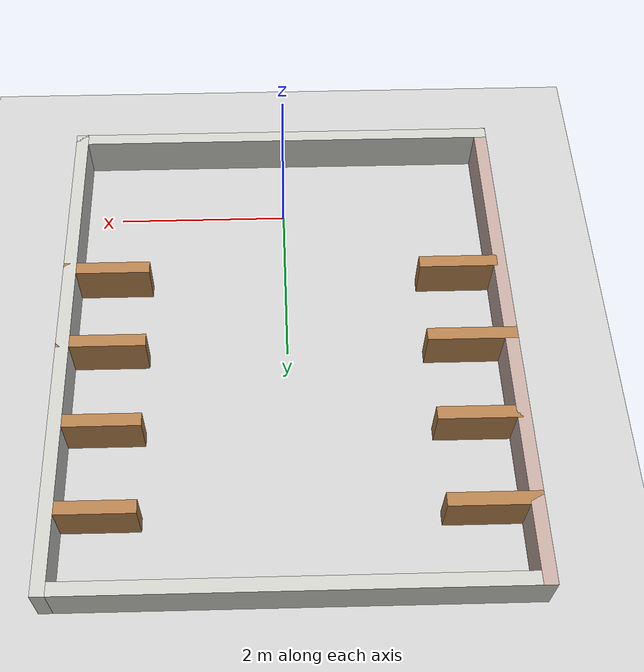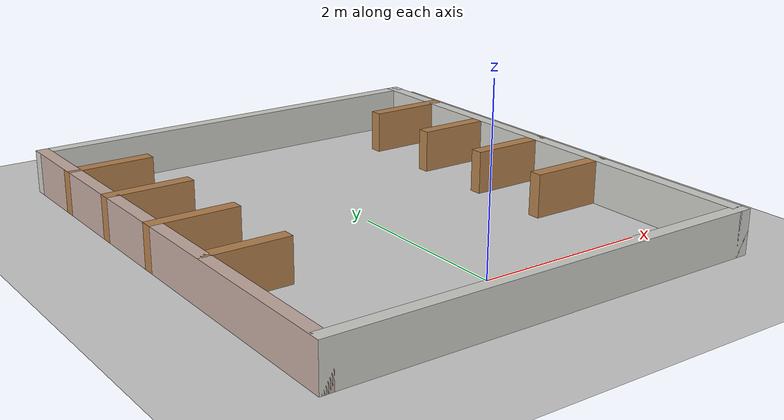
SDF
<sdf version="1.7">
 <world name="default">
  <light name="sun" type="directional">
   <pose>0 0 10 0 -0 0</pose>
   <diffuse>0.8 0.8 0.8 1</diffuse>
   <specular>0.2 0.2 0.2 1</specular>
   <attenuation>
    <range>1000</range>
    <constant>0.9</constant>
    <linear>0.01</linear>
    <quadratic>0.001</quadratic>
   </attenuation>
   <direction>-0.5 0.1 -0.9</direction>
   <spot><inner_angle>0</inner_angle><outer_angle>0</outer_angle><falloff>0</falloff></spot>
  </light>
  <model name="ground_plane">
   <static>1</static>
   <link name="link">
    <collision name="collision">
     <geometry><plane><normal>0 0 1</normal><size>100 100</size></plane></geometry>
     <surface><friction><ode><mu>100</mu><mu2>50</mu2></ode></friction></surface>
    </collision>
    <visual name="visual">
     <cast_shadows>0</cast_shadows>
     <geometry><plane><normal>0 0 1</normal><size>100 100</size></plane></geometry>
     <material>
      <script><uri>file://media/materials/scripts/gazebo.material</uri><name>Gazebo/Grey</name></script>
     </material>
    </visual>
   </link>
  </model>
  <gravity>0 0 -9.8</gravity>
  <magnetic_field>6e-06 2.3e-05 -4.2e-05</magnetic_field>
  <atmosphere type="adiabatic"/>
  <physics type="ode">
   <max_step_size>0.001</max_step_size>
   <real_time_factor>1</real_time_factor>
   <real_time_update_rate>1000</real_time_update_rate>
  </physics>
  <scene><ambient>0.4 0.4 0.4 1</ambient><background>0.7 0.7 0.7 1</background><shadows>1</shadows></scene>
  <audio><device>default</device></audio>
  <spherical_coordinates>
   <surface_model>EARTH_WGS84</surface_model>
   <latitude_deg>0</latitude_deg>
   <longitude_deg>0</longitude_deg>
   <elevation>0</elevation>
   <heading_deg>0</heading_deg>
  </spherical_coordinates>
  <model name="sdp_3">
   <pose>0 2 0 0 -0 0</pose>
   <link name="Wall_10">
    <collision name="Wall_10_Collision">
     <geometry><box><size>6 0.15 0.5</size></box></geometry>
     <pose>0 0 0.25 0 -0 0</pose>
    </collision>
    <visual name="Wall_10_Visual">
     <pose>0 0 0.25 0 -0 0</pose>
     <geometry><box><size>6 0.15 0.5</size></box></geometry>
     <material>
      <script><uri>file://media/materials/scripts/gazebo.material</uri><name>Gazebo/CeilingTiled</name></script>
      <ambient>0.760784 0.662745 0.627451 1</ambient>
     </material>
     <meta><layer>0</layer></meta>
    </visual>
    <pose>2.5 0 0 0 -0 1.5708</pose>
   </link>
   <link name="Wall_11">
    <collision name="Wall_11_Collision">
     <geometry><box><size>5.15 0.15 0.5</size></box></geometry>
     <pose>0 0 0.25 0 -0 0</pose>
    </collision>
    <visual name="Wall_11_Visual">
     <pose>0 0 0.25 0 -0 0</pose>
     <geometry><box><size>5.15 0.15 0.5</size></box></geometry>
     <material>
      <script><uri>file://media/materials/scripts/gazebo.material</uri><name>Gazebo/CeilingTiled</name></script>
      <ambient>0.760784 0.662745 0.627451 1</ambient>
     </material>
     <meta><layer>0</layer></meta>
    </visual>
    <pose>0 2.925 0 0 -0 3.14159</pose>
   </link>
   <link name="Wall_12">
    <collision name="Wall_12_Collision">
     <geometry><box><size>6 0.15 0.5</size></box></geometry>
     <pose>0 0 0.25 0 -0 0</pose>
    </collision>
    <visual name="Wall_12_Visual">
     <pose>0 0 0.25 0 -0 0</pose>
     <geometry><box><size>6 0.15 0.5</size></box></geometry>
     <material>
      <script><uri>file://media/materials/scripts/gazebo.material</uri><name>Gazebo/Grey</name></script>
      <ambient>0.760784 0.662745 0.627451 1</ambient>
     </material>
     <meta><layer>0</layer></meta>
    </visual>
    <pose>-2.5 0 0 0 -0 -1.5708</pose>
   </link>
   <link name="Wall_14">
    <collision name="Wall_14_Collision">
     <geometry><box><size>1.011 0.15 0.5</size></box></geometry>
     <pose>0 0 0.25 0 -0 0</pose>
    </collision>
    <visual name="Wall_14_Visual">
     <pose>0 0 0.25 0 -0 0</pose>
     <geometry><box><size>1.011 0.15 0.5</size></box></geometry>
     <material>
      <script><uri>file://media/materials/scripts/gazebo.material</uri><name>Gazebo/Wood</name></script>
      <ambient>1 1 1 1</ambient>
     </material>
     <meta><layer>0</layer></meta>
    </visual>
    <pose>-2.0695 -0.925 0 0 -0 0</pose>
   </link>
   <link name="Wall_16">
    <collision name="Wall_16_Collision">
     <geometry><box><size>1.011 0.15 0.5</size></box></geometry>
     <pose>0 0 0.25 0 -0 0</pose>
    </collision>
    <visual name="Wall_16_Visual">
     <pose>0 0 0.25 0 -0 0</pose>
     <geometry><box><size>1.011 0.15 0.5</size></box></geometry>
     <material>
      <script><uri>file://media/materials/scripts/gazebo.material</uri><name>Gazebo/Wood</name></script>
      <ambient>1 1 1 1</ambient>
     </material>
     <meta><layer>0</layer></meta>
    </visual>
    <pose>-2.0695 0.075 0 0 -0 0</pose>
   </link>
   <link name="Wall_23">
    <collision name="Wall_23_Collision">
     <geometry><box><size>1 0.15 0.5</size></box></geometry>
     <pose>0 0 0.25 0 -0 0</pose>
    </collision>
    <visual name="Wall_23_Visual">
     <pose>0 0 0.25 0 -0 0</pose>
     <geometry><box><size>1 0.15 0.5</size></box></geometry>
     <material>
      <script><uri>file://media/materials/scripts/gazebo.material</uri><name>Gazebo/Wood</name></script>
      <ambient>1 1 1 1</ambient>
     </material>
     <meta><layer>0</layer></meta>
    </visual>
    <pose>-2.075 1.075 0 0 -0 0</pose>
   </link>
   <link name="Wall_25">
    <collision name="Wall_25_Collision">
     <geometry><box><size>1 0.15 0.5</size></box></geometry>
     <pose>0 0 0.25 0 -0 0</pose>
    </collision>
    <visual name="Wall_25_Visual">
     <pose>0 0 0.25 0 -0 0</pose>
     <geometry><box><size>1 0.15 0.5</size></box></geometry>
     <material>
      <script><uri>file://media/materials/scripts/gazebo.material</uri><name>Gazebo/Wood</name></script>
      <ambient>1 1 1 1</ambient>
     </material>
     <meta><layer>0</layer></meta>
    </visual>
    <pose>-2.075 2.075 0 0 -0 3.14159</pose>
   </link>
   <link name="Wall_28">
    <collision name="Wall_28_Collision">
     <geometry><box><size>1 0.15 0.5</size></box></geometry>
     <pose>0 0 0.25 0 -0 0</pose>
    </collision>
    <visual name="Wall_28_Visual">
     <pose>0 0 0.25 0 -0 0</pose>
     <geometry><box><size>1 0.15 0.5</size></box></geometry>
     <material>
      <script><uri>file://media/materials/scripts/gazebo.material</uri><name>Gazebo/Wood</name></script>
      <ambient>1 1 1 1</ambient>
     </material>
     <meta><layer>0</layer></meta>
    </visual>
    <pose>2.075 2.075 0 0 -0 0</pose>
   </link>
   <link name="Wall_30">
    <collision name="Wall_30_Collision">
     <geometry><box><size>1 0.15 0.5</size></box></geometry>
     <pose>0 0 0.25 0 -0 0</pose>
    </collision>
    <visual name="Wall_30_Visual">
     <pose>0 0 0.25 0 -0 0</pose>
     <geometry><box><size>1 0.15 0.5</size></box></geometry>
     <material>
      <script><uri>file://media/materials/scripts/gazebo.material</uri><name>Gazebo/Wood</name></script>
      <ambient>1 1 1 1</ambient>
     </material>
     <meta><layer>0</layer></meta>
    </visual>
    <pose>2.075 1.075 0 0 -0 3.14159</pose>
   </link>
   <link name="Wall_32">
    <collision name="Wall_32_Collision">
     <geometry><box><size>1 0.15 0.5</size></box></geometry>
     <pose>0 0 0.25 0 -0 0</pose>
    </collision>
    <visual name="Wall_32_Visual">
     <pose>0 0 0.25 0 -0 0</pose>
     <geometry><box><size>1 0.15 0.5</size></box></geometry>
     <material>
      <script><uri>file://media/materials/scripts/gazebo.material</uri><name>Gazebo/Wood</name></script>
      <ambient>1 1 1 1</ambient>
     </material>
     <meta><layer>0</layer></meta>
    </visual>
    <pose>2.075 0.075 0 0 -0 0</pose>
   </link>
   <link name="Wall_34">
    <collision name="Wall_34_Collision">
     <geometry><box><size>1 0.15 0.5</size></box></geometry>
     <pose>0 0 0.25 0 -0 0</pose>
    </collision>
    <visual name="Wall_34_Visual">
     <pose>0 0 0.25 0 -0 0</pose>
     <geometry><box><size>1 0.15 0.5</size></box></geometry>
     <material>
      <script><uri>file://media/materials/scripts/gazebo.material</uri><name>Gazebo/Wood</name></script>
      <ambient>1 1 1 1</ambient>
     </material>
     <meta><layer>0</layer></meta>
    </visual>
    <pose>2.075 -0.925 0 0 -0 0</pose>
   </link>
   <link name="Wall_7">
    <collision name="Wall_7_Collision">
     <geometry><box><size>5.15 0.15 0.5</size></box></geometry>
     <pose>0 0 0.25 0 -0 0</pose>
    </collision>
    <visual name="Wall_7_Visual">
     <pose>0 0 0.25 0 -0 0</pose>
     <geometry><box><size>5.15 0.15 0.5</size></box></geometry>
     <material>
      <script><uri>file://media/materials/scripts/gazebo.material</uri><name>Gazebo/CeilingTiled</name></script>
      <ambient>0.760784 0.662745 0.627451 1</ambient>
     </material>
     <meta><layer>0</layer></meta>
    </visual>
    <pose>0 -2.925 0 0 -0 0</pose>
   </link>
   <static>1</static>
  </model>
 </world>
</sdf>
